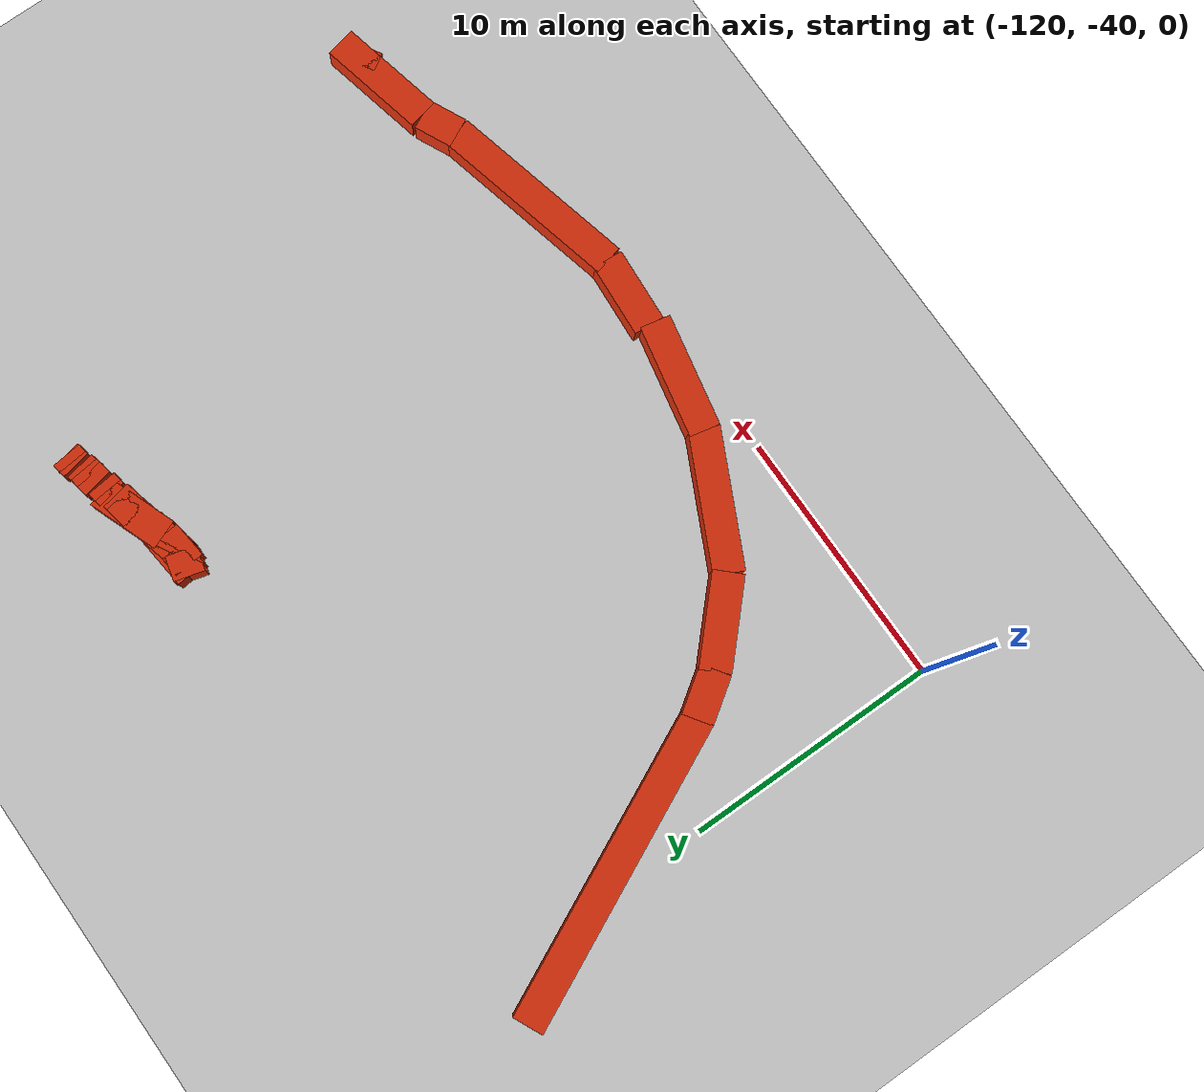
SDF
<sdf version="1.6">
 <world name="default">
  <include><uri>model://ground_plane</uri></include>
  <model name="track_inner_guardrail">
   <static>true</static>
   <link name="seg_214">
    <pose>-100.90 -20.21 0.55 0 0 0.1057</pose>
    <collision name="col"><geometry><box><size>2.44 1.20 1.1</size></box></geometry></collision>
    <visual name="vis">
     <geometry><box><size>2.44 1.20 1.1</size></box></geometry>
     <material>
      <ambient>0.35 0.08 0.02 1</ambient>
      <diffuse>0.85 0.18 0.04 1</diffuse>
      <specular>0.2 0.2 0.2 1</specular>
     </material>
    </visual>
   </link>
   <link name="seg_215">
    <pose>-98.77 -19.80 0.55 0 0 0.1846</pose>
    <collision name="col"><geometry><box><size>0.94 1.20 1.1</size></box></geometry></collision>
    <visual name="vis">
     <geometry><box><size>0.94 1.20 1.1</size></box></geometry>
     <material>
      <ambient>0.35 0.08 0.02 1</ambient>
      <diffuse>0.85 0.18 0.04 1</diffuse>
      <specular>0.2 0.2 0.2 1</specular>
     </material>
    </visual>
   </link>
   <link name="seg_216">
    <pose>-97.67 -19.50 0.55 0 0 0.1057</pose>
    <collision name="col"><geometry><box><size>0.35 1.20 1.1</size></box></geometry></collision>
    <visual name="vis">
     <geometry><box><size>0.35 1.20 1.1</size></box></geometry>
     <material>
      <ambient>0.35 0.08 0.02 1</ambient>
      <diffuse>0.85 0.18 0.04 1</diffuse>
      <specular>0.2 0.2 0.2 1</specular>
     </material>
    </visual>
   </link>
   <link name="seg_217">
    <pose>-96.87 -19.27 0.55 0 0 0.1057</pose>
    <collision name="col"><geometry><box><size>0.35 1.20 1.1</size></box></geometry></collision>
    <visual name="vis">
     <geometry><box><size>0.35 1.20 1.1</size></box></geometry>
     <material>
      <ambient>0.35 0.08 0.02 1</ambient>
      <diffuse>0.85 0.18 0.04 1</diffuse>
      <specular>0.2 0.2 0.2 1</specular>
     </material>
    </visual>
   </link>
   <link name="seg_218">
    <pose>-96.06 -19.03 0.55 0 0 0.1057</pose>
    <collision name="col"><geometry><box><size>0.35 1.20 1.1</size></box></geometry></collision>
    <visual name="vis">
     <geometry><box><size>0.35 1.20 1.1</size></box></geometry>
     <material>
      <ambient>0.35 0.08 0.02 1</ambient>
      <diffuse>0.85 0.18 0.04 1</diffuse>
      <specular>0.2 0.2 0.2 1</specular>
     </material>
    </visual>
   </link>
   <link name="seg_231">
    <pose>-96.14 -19.04 0.55 0 0 -2.9529</pose>
    <collision name="col"><geometry><box><size>0.53 1.20 1.1</size></box></geometry></collision>
    <visual name="vis">
     <geometry><box><size>0.53 1.20 1.1</size></box></geometry>
     <material>
      <ambient>0.35 0.08 0.02 1</ambient>
      <diffuse>0.85 0.18 0.04 1</diffuse>
      <specular>0.2 0.2 0.2 1</specular>
     </material>
    </visual>
   </link>
   <link name="seg_232">
    <pose>-96.76 -19.24 0.55 0 0 -2.9529</pose>
    <collision name="col"><geometry><box><size>0.53 1.20 1.1</size></box></geometry></collision>
    <visual name="vis">
     <geometry><box><size>0.53 1.20 1.1</size></box></geometry>
     <material>
      <ambient>0.35 0.08 0.02 1</ambient>
      <diffuse>0.85 0.18 0.04 1</diffuse>
      <specular>0.2 0.2 0.2 1</specular>
     </material>
    </visual>
   </link>
   <link name="seg_233">
    <pose>-97.17 -19.32 0.55 0 0 -2.9529</pose>
    <collision name="col"><geometry><box><size>0.53 1.20 1.1</size></box></geometry></collision>
    <visual name="vis">
     <geometry><box><size>0.53 1.20 1.1</size></box></geometry>
     <material>
      <ambient>0.35 0.08 0.02 1</ambient>
      <diffuse>0.85 0.18 0.04 1</diffuse>
      <specular>0.2 0.2 0.2 1</specular>
     </material>
    </visual>
   </link>
   <link name="seg_234">
    <pose>-97.79 -19.52 0.55 0 0 -2.9529</pose>
    <collision name="col"><geometry><box><size>0.53 1.20 1.1</size></box></geometry></collision>
    <visual name="vis">
     <geometry><box><size>0.53 1.20 1.1</size></box></geometry>
     <material>
      <ambient>0.35 0.08 0.02 1</ambient>
      <diffuse>0.85 0.18 0.04 1</diffuse>
      <specular>0.2 0.2 0.2 1</specular>
     </material>
    </visual>
   </link>
   <link name="seg_235">
    <pose>-98.41 -19.72 0.55 0 0 -2.9529</pose>
    <collision name="col"><geometry><box><size>0.53 1.20 1.1</size></box></geometry></collision>
    <visual name="vis">
     <geometry><box><size>0.53 1.20 1.1</size></box></geometry>
     <material>
      <ambient>0.35 0.08 0.02 1</ambient>
      <diffuse>0.85 0.18 0.04 1</diffuse>
      <specular>0.2 0.2 0.2 1</specular>
     </material>
    </visual>
   </link>
   <link name="seg_236">
    <pose>-99.94 -20.11 0.55 0 0 -2.8805</pose>
    <collision name="col"><geometry><box><size>2.85 1.20 1.1</size></box></geometry></collision>
    <visual name="vis">
     <geometry><box><size>2.85 1.20 1.1</size></box></geometry>
     <material>
      <ambient>0.35 0.08 0.02 1</ambient>
      <diffuse>0.85 0.18 0.04 1</diffuse>
      <specular>0.2 0.2 0.2 1</specular>
     </material>
    </visual>
   </link>
   <link name="seg_237">
    <pose>-101.67 -20.35 0.55 0 0 2.8807</pose>
    <collision name="col"><geometry><box><size>0.97 1.20 1.1</size></box></geometry></collision>
    <visual name="vis">
     <geometry><box><size>0.97 1.20 1.1</size></box></geometry>
     <material>
      <ambient>0.35 0.08 0.02 1</ambient>
      <diffuse>0.85 0.18 0.04 1</diffuse>
      <specular>0.2 0.2 0.2 1</specular>
     </material>
    </visual>
   </link>
   <link name="seg_240">
    <pose>-101.09 -20.38 0.55 0 0 0.1083</pose>
    <collision name="col"><geometry><box><size>1.45 1.20 1.1</size></box></geometry></collision>
    <visual name="vis">
     <geometry><box><size>1.45 1.20 1.1</size></box></geometry>
     <material>
      <ambient>0.35 0.08 0.02 1</ambient>
      <diffuse>0.85 0.18 0.04 1</diffuse>
      <specular>0.2 0.2 0.2 1</specular>
     </material>
    </visual>
   </link>
   <link name="seg_241">
    <pose>-99.04 -19.80 0.55 0 0 0.3638</pose>
    <collision name="col"><geometry><box><size>2.84 1.20 1.1</size></box></geometry></collision>
    <visual name="vis">
     <geometry><box><size>2.84 1.20 1.1</size></box></geometry>
     <material>
      <ambient>0.35 0.08 0.02 1</ambient>
      <diffuse>0.85 0.18 0.04 1</diffuse>
      <specular>0.2 0.2 0.2 1</specular>
     </material>
    </visual>
   </link>
  </model>
  <model name="track_outer_guardrail">
   <static>true</static>
   <link name="seg_137">
    <pose>-119.30 -26.71 0.55 0 0 -1.1317</pose>
    <collision name="col"><geometry><box><size>12.25 1.20 1.1</size></box></geometry></collision>
    <visual name="vis">
     <geometry><box><size>12.25 1.20 1.1</size></box></geometry>
     <material>
      <ambient>0.35 0.08 0.02 1</ambient>
      <diffuse>0.85 0.18 0.04 1</diffuse>
      <specular>0.2 0.2 0.2 1</specular>
     </material>
    </visual>
   </link>
   <link name="seg_138">
    <pose>-116.22 -32.95 0.55 0 0 -0.9747</pose>
    <collision name="col"><geometry><box><size>1.91 1.20 1.1</size></box></geometry></collision>
    <visual name="vis">
     <geometry><box><size>1.91 1.20 1.1</size></box></geometry>
     <material>
      <ambient>0.35 0.08 0.02 1</ambient>
      <diffuse>0.85 0.18 0.04 1</diffuse>
      <specular>0.2 0.2 0.2 1</specular>
     </material>
    </visual>
   </link>
   <link name="seg_139">
    <pose>-114.42 -34.94 0.55 0 0 -0.7637</pose>
    <collision name="col"><geometry><box><size>3.64 1.20 1.1</size></box></geometry></collision>
    <visual name="vis">
     <geometry><box><size>3.64 1.20 1.1</size></box></geometry>
     <material>
      <ambient>0.35 0.08 0.02 1</ambient>
      <diffuse>0.85 0.18 0.04 1</diffuse>
      <specular>0.2 0.2 0.2 1</specular>
     </material>
    </visual>
   </link>
   <link name="seg_140">
    <pose>-110.74 -37.38 0.55 0 0 -0.4609</pose>
    <collision name="col"><geometry><box><size>5.41 1.20 1.1</size></box></geometry></collision>
    <visual name="vis">
     <geometry><box><size>5.41 1.20 1.1</size></box></geometry>
     <material>
      <ambient>0.35 0.08 0.02 1</ambient>
      <diffuse>0.85 0.18 0.04 1</diffuse>
      <specular>0.2 0.2 0.2 1</specular>
     </material>
    </visual>
   </link>
   <link name="seg_141">
    <pose>-106.25 -39.00 0.55 0 0 -0.2048</pose>
    <collision name="col"><geometry><box><size>4.45 1.20 1.1</size></box></geometry></collision>
    <visual name="vis">
     <geometry><box><size>4.45 1.20 1.1</size></box></geometry>
     <material>
      <ambient>0.35 0.08 0.02 1</ambient>
      <diffuse>0.85 0.18 0.04 1</diffuse>
      <specular>0.2 0.2 0.2 1</specular>
     </material>
    </visual>
   </link>
   <link name="seg_142">
    <pose>-102.61 -39.29 0.55 0 0 -0.0692</pose>
    <collision name="col"><geometry><box><size>2.93 1.20 1.1</size></box></geometry></collision>
    <visual name="vis">
     <geometry><box><size>2.93 1.20 1.1</size></box></geometry>
     <material>
      <ambient>0.35 0.08 0.02 1</ambient>
      <diffuse>0.85 0.18 0.04 1</diffuse>
      <specular>0.2 0.2 0.2 1</specular>
     </material>
    </visual>
   </link>
   <link name="seg_143">
    <pose>-97.55 -38.53 0.55 0 0 0.2363</pose>
    <collision name="col"><geometry><box><size>7.51 1.20 1.1</size></box></geometry></collision>
    <visual name="vis">
     <geometry><box><size>7.51 1.20 1.1</size></box></geometry>
     <material>
      <ambient>0.35 0.08 0.02 1</ambient>
      <diffuse>0.85 0.18 0.04 1</diffuse>
      <specular>0.2 0.2 0.2 1</specular>
     </material>
    </visual>
   </link>
   <link name="seg_144">
    <pose>-93.28 -37.34 0.55 0 0 0.4464</pose>
    <collision name="col"><geometry><box><size>1.50 1.20 1.1</size></box></geometry></collision>
    <visual name="vis">
     <geometry><box><size>1.50 1.20 1.1</size></box></geometry>
     <material>
      <ambient>0.35 0.08 0.02 1</ambient>
      <diffuse>0.85 0.18 0.04 1</diffuse>
      <specular>0.2 0.2 0.2 1</specular>
     </material>
    </visual>
   </link>
   <link name="seg_145">
    <pose>-90.53 -36.55 0.55 0 0 0.2220</pose>
    <collision name="col"><geometry><box><size>4.25 1.20 1.1</size></box></geometry></collision>
    <visual name="vis">
     <geometry><box><size>4.25 1.20 1.1</size></box></geometry>
     <material>
      <ambient>0.35 0.08 0.02 1</ambient>
      <diffuse>0.85 0.18 0.04 1</diffuse>
      <specular>0.2 0.2 0.2 1</specular>
     </material>
    </visual>
   </link>
   <link name="seg_148">
    <pose>-89.43 -36.49 0.55 0 0 2.1287</pose>
    <collision name="col"><geometry><box><size>0.73 1.20 1.1</size></box></geometry></collision>
    <visual name="vis">
     <geometry><box><size>0.73 1.20 1.1</size></box></geometry>
     <material>
      <ambient>0.35 0.08 0.02 1</ambient>
      <diffuse>0.85 0.18 0.04 1</diffuse>
      <specular>0.2 0.2 0.2 1</specular>
     </material>
    </visual>
   </link>
  </model>
 </world>
</sdf>
